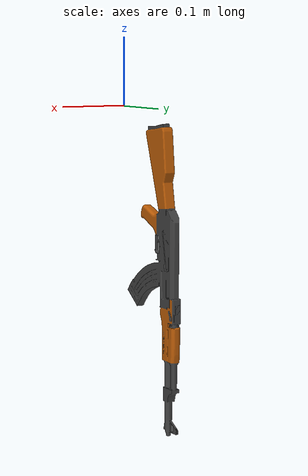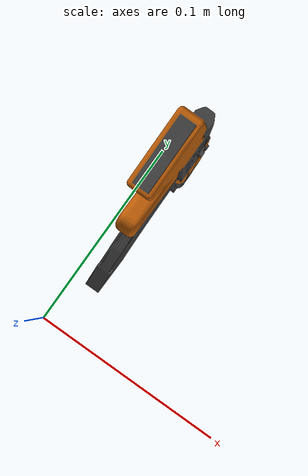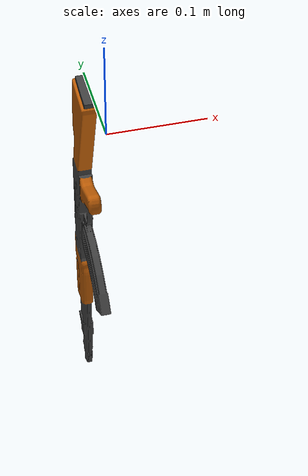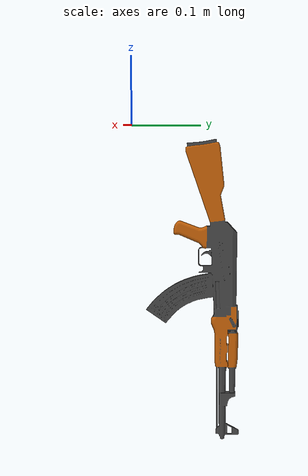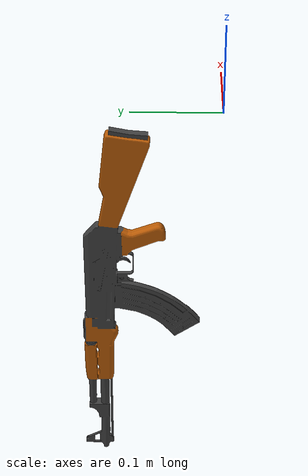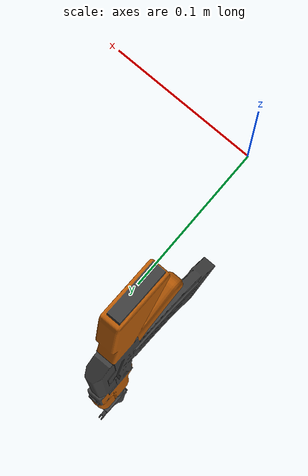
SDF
<?xml version="1.0" ?>
<sdf version="1.6">
  <model name="gun">
      <static>true</static>
      <link name='link'>
       <collision name="collision">
        <geometry>
            <mesh>
              <uri>model://gun/meshes/gun.dae</uri>
              <scale>1 1 1</scale>
            </mesh>
        </geometry>
        <surface>
          <contact>
             <collide_bitmask>0xffff</collide_bitmask>
          </contact>
          <friction>
            <ode>
              <mu>100</mu>
              <mu2>50</mu2>
            </ode>
          </friction>
        </surface>
      </collision>
        <visual name='visual'>
          <geometry>
            <mesh>
              <uri>model://gun/meshes/gun.dae</uri>
              <scale>1 1 1</scale>
            </mesh>
          </geometry>
        </visual>
      </link>
  </model>
</sdf>
